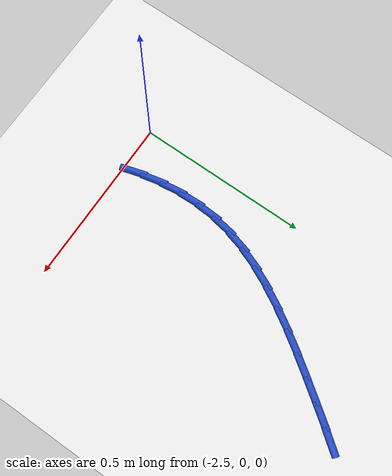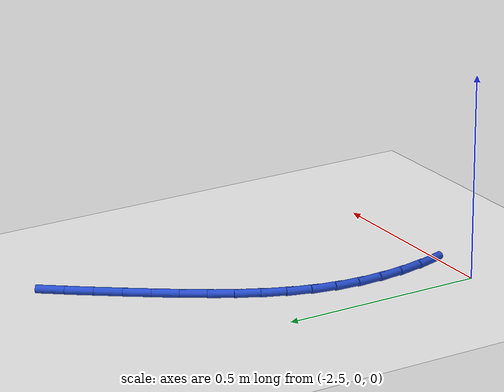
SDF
<sdf version="1.6">
 <world name="default">
  <model name="ground_plane">
   <static>1</static>
   <link name="link">
    <collision name="collision">
     <geometry><plane><normal>0 0 1</normal><size>100 100</size></plane></geometry>
     <surface><friction><ode><mu>100</mu><mu2>50</mu2></ode></friction></surface>
    </collision>
    <visual name="visual">
     <cast_shadows>0</cast_shadows>
     <geometry><plane><normal>0 0 1</normal><size>100 100</size></plane></geometry>
     <material>
      <script><uri>file://media/materials/scripts/gazebo.material</uri><name>Gazebo/WhiteGlow</name></script>
     </material>
    </visual>
   </link>
  </model>
  <model name="line">
   <link name="link_45">
    <pose>-2.06823652934593 0.8800499884973554 0.01 0 1.57 0.916205752140532</pose>
    <collision name="collision">
     <geometry><cylinder><radius>0.01</radius><length>0.08</length></cylinder></geometry>
    </collision>
    <visual name="visual">
     <material>
      <script><name>Gazebo/Blue</name><uri>file://media/materials/scripts/gazebo.material</uri></script>
     </material>
     <geometry><cylinder><radius>0.01</radius><length>0.08</length></cylinder></geometry>
    </visual>
   </link>
   <link name="link_46">
    <pose>-2.109554983566323 0.8262129984907299 0.01 0 1.57 0.9394672839754172</pose>
    <collision name="collision">
     <geometry><cylinder><radius>0.01</radius><length>0.08</length></cylinder></geometry>
    </collision>
    <visual name="visual">
     <material>
      <script><name>Gazebo/Blue</name><uri>file://media/materials/scripts/gazebo.material</uri></script>
     </material>
     <geometry><cylinder><radius>0.01</radius><length>0.08</length></cylinder></geometry>
    </visual>
   </link>
   <link name="link_47">
    <pose>-2.149817908677347 0.7711452289856918 0.01 0 1.57 0.9468186693619656</pose>
    <collision name="collision">
     <geometry><cylinder><radius>0.01</radius><length>0.08</length></cylinder></geometry>
    </collision>
    <visual name="visual">
     <material>
      <script><name>Gazebo/Blue</name><uri>file://media/materials/scripts/gazebo.material</uri></script>
     </material>
     <geometry><cylinder><radius>0.01</radius><length>0.08</length></cylinder></geometry>
    </visual>
   </link>
   <link name="link_48">
    <pose>-2.1892278716050813 0.7164039289228493 0.01 0 1.57 0.9608892001179432</pose>
    <collision name="collision">
     <geometry><cylinder><radius>0.01</radius><length>0.08</length></cylinder></geometry>
    </collision>
    <visual name="visual">
     <material>
      <script><name>Gazebo/Blue</name><uri>file://media/materials/scripts/gazebo.material</uri></script>
     </material>
     <geometry><cylinder><radius>0.01</radius><length>0.08</length></cylinder></geometry>
    </visual>
   </link>
   <link name="link_49">
    <pose>-2.2272283009020786 0.6620228719209403 0.01 0 1.57 0.9860574965433168</pose>
    <collision name="collision">
     <geometry><cylinder><radius>0.01</radius><length>0.08</length></cylinder></geometry>
    </collision>
    <visual name="visual">
     <material>
      <script><name>Gazebo/Blue</name><uri>file://media/materials/scripts/gazebo.material</uri></script>
     </material>
     <geometry><cylinder><radius>0.01</radius><length>0.08</length></cylinder></geometry>
    </visual>
   </link>
   <link name="link_50">
    <pose>-2.2631351048829966 0.6077799178651324 0.01 0 1.57 1.0231955438453098</pose>
    <collision name="collision">
     <geometry><cylinder><radius>0.01</radius><length>0.08</length></cylinder></geometry>
    </collision>
    <visual name="visual">
     <material>
      <script><name>Gazebo/Blue</name><uri>file://media/materials/scripts/gazebo.material</uri></script>
     </material>
     <geometry><cylinder><radius>0.01</radius><length>0.08</length></cylinder></geometry>
    </visual>
   </link>
   <link name="link_51">
    <pose>-2.296264191862495 0.5534529266405955 0.01 0 1.57 1.073322528190375</pose>
    <collision name="collision">
     <geometry><cylinder><radius>0.01</radius><length>0.08</length></cylinder></geometry>
    </collision>
    <visual name="visual">
     <material>
      <script><name>Gazebo/Blue</name><uri>file://media/materials/scripts/gazebo.material</uri></script>
     </material>
     <geometry><cylinder><radius>0.01</radius><length>0.08</length></cylinder></geometry>
    </visual>
   </link>
   <link name="link_52">
    <pose>-2.325931470155233 0.4988197581324977 0.01 0 1.57 1.1374589124598826</pose>
    <collision name="collision">
     <geometry><cylinder><radius>0.01</radius><length>0.08</length></cylinder></geometry>
    </collision>
    <visual name="visual">
     <material>
      <script><name>Gazebo/Blue</name><uri>file://media/materials/scripts/gazebo.material</uri></script>
     </material>
     <geometry><cylinder><radius>0.01</radius><length>0.08</length></cylinder></geometry>
    </visual>
   </link>
   <link name="link_53">
    <pose>-2.35145284807587 0.44365827222600807 0.01 0 1.57 1.2163540049985808</pose>
    <collision name="collision">
     <geometry><cylinder><radius>0.01</radius><length>0.08</length></cylinder></geometry>
    </collision>
    <visual name="visual">
     <material>
      <script><name>Gazebo/Blue</name><uri>file://media/materials/scripts/gazebo.material</uri></script>
     </material>
     <geometry><cylinder><radius>0.01</radius><length>0.08</length></cylinder></geometry>
    </visual>
   </link>
   <link name="link_54">
    <pose>-2.372144233939064 0.3877463288062949 0.01 0 1.57 1.3100611444288157</pose>
    <collision name="collision">
     <geometry><cylinder><radius>0.01</radius><length>0.08</length></cylinder></geometry>
    </collision>
    <visual name="visual">
     <material>
      <script><name>Gazebo/Blue</name><uri>file://media/materials/scripts/gazebo.material</uri></script>
     </material>
     <geometry><cylinder><radius>0.01</radius><length>0.08</length></cylinder></geometry>
    </visual>
   </link>
   <link name="link_55">
    <pose>-2.387321536059476 0.33086178775852765 0.01 0 1.57 1.4164483993187627</pose>
    <collision name="collision">
     <geometry><cylinder><radius>0.01</radius><length>0.08</length></cylinder></geometry>
    </collision>
    <visual name="visual">
     <material>
      <script><name>Gazebo/Blue</name><uri>file://media/materials/scripts/gazebo.material</uri></script>
     </material>
     <geometry><cylinder><radius>0.01</radius><length>0.08</length></cylinder></geometry>
    </visual>
   </link>
   <link name="link_56">
    <pose>-2.3963540439880924 0.2728068083388358 0.01 0 1.57 1.5223807301014913</pose>
    <collision name="collision">
     <geometry><cylinder><radius>0.01</radius><length>0.08</length></cylinder></geometry>
    </collision>
    <visual name="visual">
     <material>
      <script><name>Gazebo/Blue</name><uri>file://media/materials/scripts/gazebo.material</uri></script>
     </material>
     <geometry><cylinder><radius>0.01</radius><length>0.08</length></cylinder></geometry>
    </visual>
   </link>
   <link name="link_57">
    <pose>-2.399219878080012 0.21366069223352255 0.01 0 1.57 -1.5218966651460062</pose>
    <collision name="collision">
     <geometry><cylinder><radius>0.01</radius><length>0.08</length></cylinder></geometry>
    </collision>
    <visual name="visual">
     <material>
      <script><name>Gazebo/Blue</name><uri>file://media/materials/scripts/gazebo.material</uri></script>
     </material>
     <geometry><cylinder><radius>0.01</radius><length>0.08</length></cylinder></geometry>
    </visual>
   </link>
   <link name="link_58">
    <pose>-2.396284455518834 0.15367904032979243 0.01 0 1.57 -1.4335338008053005</pose>
    <collision name="collision">
     <geometry><cylinder><radius>0.01</radius><length>0.08</length></cylinder></geometry>
    </collision>
    <visual name="visual">
     <material>
      <script><name>Gazebo/Blue</name><uri>file://media/materials/scripts/gazebo.material</uri></script>
     </material>
     <geometry><cylinder><radius>0.01</radius><length>0.08</length></cylinder></geometry>
    </visual>
   </link>
   <link name="link_59">
    <pose>-2.387919405891792 0.09312028142800576 0.01 0 1.57 -1.3537758557059476</pose>
    <collision name="collision">
     <geometry><cylinder><radius>0.01</radius><length>0.08</length></cylinder></geometry>
    </collision>
    <visual name="visual">
     <material>
      <script><name>Gazebo/Blue</name><uri>file://media/materials/scripts/gazebo.material</uri></script>
     </material>
     <geometry><cylinder><radius>0.01</radius><length>0.08</length></cylinder></geometry>
    </visual>
   </link>
   <link name="link_60">
    <pose>-2.3744963587861183 0.03224284432852141 0.01 0 1.57 -1.2819293958736073</pose>
    <collision name="collision">
     <geometry><cylinder><radius>0.01</radius><length>0.08</length></cylinder></geometry>
    </collision>
    <visual name="visual">
     <material>
      <script><name>Gazebo/Blue</name><uri>file://media/materials/scripts/gazebo.material</uri></script>
     </material>
     <geometry><cylinder><radius>0.01</radius><length>0.08</length></cylinder></geometry>
    </visual>
   </link>
  </model>
 </world>
</sdf>
